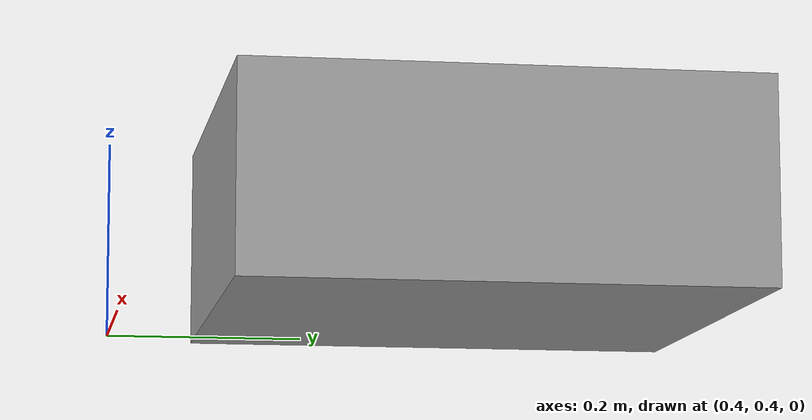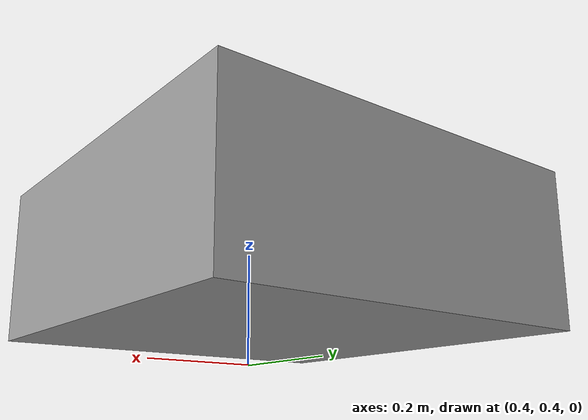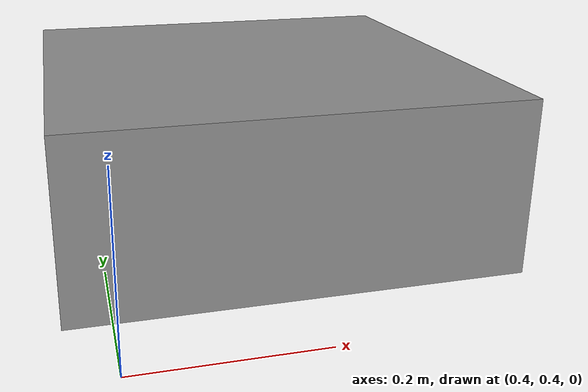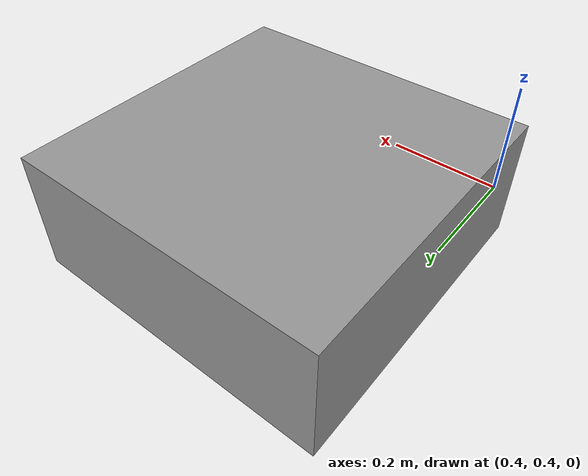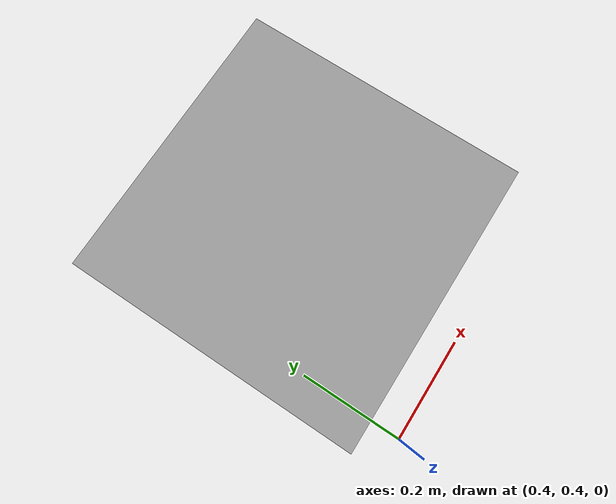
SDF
<?xml version="1.0" ?>
<sdf version='1.6'>
  <model name='box_base'>
    <static>true</static>
    <pose frame=''>0.6 0.74 0.1 0 -0 0</pose>
    <link name='link'>
      <collision name='collision'>
        <geometry>
          <box>
            <size>0.5 0.5 0.2</size>
          </box>
        </geometry>
      </collision>
      <visual name='visual'>
       <geometry>
          <box>
            <size>0.5 0.5 0.2</size>
          </box>
        </geometry>
        <material>
          <script>
            <name>Gazebo/Grey</name>
            <uri>file://media/materials/scripts/gazebo.material</uri>
          </script>
        </material>
      </visual>
      <self_collide>1</self_collide>
      <enable_wind>0</enable_wind>
      <kinematic>0</kinematic>
    </link>
  </model>
</sdf>
